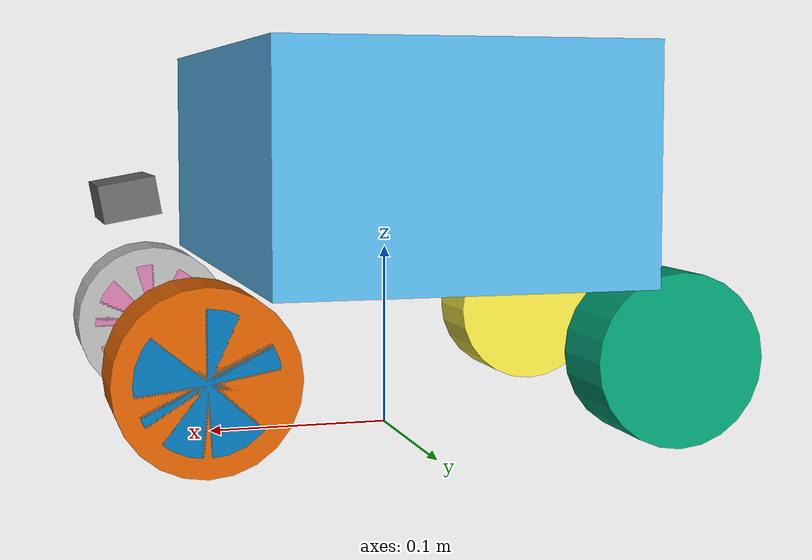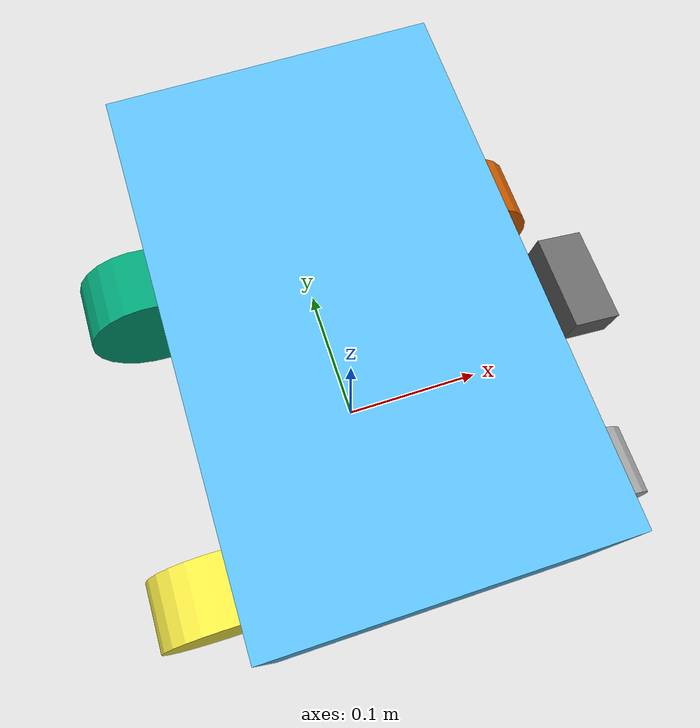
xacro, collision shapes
<?xml version="1.0"?>
<!-- LIMO Ackermann in Gazebo with the same D-Racer camera topic layout as dracer_sim.urdf -->
<robot name="limo_dracer_sim" xmlns:xacro="http://www.ros.org/wiki/xacro">

  <!-- Match vendor/limo_car/gazebo/ackermann.xacro -->
  <xacro:property name="limo_wheelbase" value="0.24"/>
  <xacro:property name="limo_base_link_height" value="0.15"/>
  <!-- Camera: 13 cm above ground, 2.5 cm ahead of front axle, pitch 10 deg down -->
  <xacro:property name="camera_height_ground_m" value="0.13"/>
  <xacro:property name="camera_ahead_front_axle_m" value="0.025"/>
  <xacro:property name="camera_pitch_down_rad" value="0.174533"/>
  <xacro:property name="camera_x" value="${limo_wheelbase/2 + camera_ahead_front_axle_m}"/>
  <xacro:property name="camera_z" value="${camera_height_ground_m - limo_base_link_height}"/>

  <xacro:include filename="$(find limo_car)/gazebo/ackermann.xacro"/>
  <xacro:limo_ackermann/>

  <!-- Gazebo joint states for robot_state_publisher / RViz -->
  <gazebo>
    <plugin name="gazebo_ros_joint_state_publisher"
            filename="libgazebo_ros_joint_state_publisher.so">
      <ros>
        <namespace>/</namespace>
        <remapping>~/out:=joint_states</remapping>
      </ros>
      <update_rate>30</update_rate>
      <joint_name>front_left_steer_joint</joint_name>
      <joint_name>front_left_wheel_joint</joint_name>
      <joint_name>front_right_steer_joint</joint_name>
      <joint_name>front_right_wheel_joint</joint_name>
      <joint_name>rear_left_wheel_joint</joint_name>
      <joint_name>rear_right_wheel_joint</joint_name>
    </plugin>
  </gazebo>

  <link name="camera_link">
    <visual>
      <geometry>
        <box size="0.03 0.06 0.02"/>
      </geometry>
      <material name="gray">
        <color rgba="0.4 0.4 0.4 1"/>
      </material>
    </visual>
    <collision>
      <geometry>
        <box size="0.03 0.06 0.02"/>
      </geometry>
    </collision>
    <inertial>
      <mass value="0.05"/>
      <origin xyz="0 0 0" rpy="0 0 0"/>
      <inertia ixx="1e-5" ixy="0" ixz="0" iyy="1e-5" iyz="0" izz="1e-5"/>
    </inertial>
  </link>

  <joint name="camera_joint" type="fixed">
    <parent link="base_link"/>
    <child link="camera_link"/>
    <origin xyz="${camera_x} 0 ${camera_z}" rpy="0 ${camera_pitch_down_rad} 0"/>
  </joint>

  <gazebo reference="camera_link">
    <sensor name="camera" type="camera">
      <always_on>true</always_on>
      <update_rate>30</update_rate>
      <visualize>false</visualize>
      <camera>
        <horizontal_fov>1.22906</horizontal_fov>
        <image>
          <width>640</width>
          <height>360</height>
          <format>R8G8B8</format>
        </image>
        <clip>
          <near>0.05</near>
          <far>20.0</far>
        </clip>
      </camera>
      <plugin name="camera_controller" filename="libgazebo_ros_camera.so">
        <ros>
          <namespace>/gazebo</namespace>
          <remapping>image_raw:=camera/image_raw</remapping>
          <remapping>camera_info:=camera/camera_info</remapping>
        </ros>
        <frame_name>camera</frame_name>
        <camera_name>camera</camera_name>
      </plugin>
    </sensor>
  </gazebo>

</robot>

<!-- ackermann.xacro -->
<!--Auto: Zhui Li-->
<!--E-Mail: lz554113510@gmail.com -->
<!--Company: Institut für Intermodale Transport- und Logistiksysteme in Technische Universität Braunschweig -->

<robot name="limo_ackermann" xmlns:xacro="http://www.ros.org/wiki/xacro">

    <!-- ******************************** Paramenten zu definieren ************************************* -->
    <!-- definiert Value -->
    <xacro:property name="M_PI" value="3.14159"/>

    <!-- das Value sind all gemessen -->
    <xacro:property name="base_mass" value="4.34"/>
    <xacro:property name="base_x_size" value="0.19" />
    <xacro:property name="base_y_size" value="0.31" />
    <xacro:property name="base_z_size" value="0.12" />

    <xacro:property name="wheelbase" value="0.24"/>
    <xacro:property name="track" value="0.168"/>
    <xacro:property name="wheel_vertical_offset" value="-0.10" />

    <xacro:property name="wheel_mass" value="0.5" />
    <xacro:property name="wheel_length" value="0.045" />
    <xacro:property name="wheel_radius" value="0.045" />

    <!-- definieren die Macro-Function für die Rechnungen der Matrizen für Trägheitsmoment-->
    <!-- Zylinder -->
    <xacro:macro name="cylinder_inertial_matrix" params="m r h">
        <inertial>
            <origin xyz="0.0 0.0 0.0" />
            <mass value="${m}" />
            <inertia ixx="${m*(3*r*r+h*h)/12}" ixy = "0" ixz = "0"
                     iyy="${m*(3*r*r+h*h)/12}" iyz = "0"
                     izz="${m*r*r/2}" />
        </inertial>
    </xacro:macro>
    <!-- Quader -->
    <xacro:macro name="box_inertial_matrix" params="m w l h">
        <inertial>
            <origin xyz="0.0 0.0 0.0" />
            <mass value="${m}" />
            <inertia ixx="${m*(w*w+h*h)/12}" ixy = "0" ixz = "0"
                     iyy="${m*(h*h+l*l)/12}" iyz = "0"
                     izz="${m*(w*w+l*l)/12}" />
        </inertial>
    </xacro:macro>

    <!-- **************************** Makrofunktion zu definieren ************************************** -->
    <!-- Makrofunktion für vorderen Räder mit Steuerscharnier-->
    <!-- front left -->
    <xacro:macro name="limo_left_steering_hinge" params="parent_prefix wheel_prefix *joint_pose">
        <link name="${wheel_prefix}_steer_link">
            <inertial>
                <!-- diese Daten kommen aus den Herstellern -->
                <mass value="0.25" />
                <inertia ixx="0.00525" ixy="0" ixz="0" iyy="0.00035" iyz="0" izz="0.00525" />
                <origin xyz="0 0 0" />
            </inertial>
            <visual>
                <origin xyz="0 0 0" rpy="0 0 0" />
                <geometry>
                    <!-- es ist sehr klein, einfach als Klein definiert wird -->
                    <cylinder length="0.0001" radius="0.0001" />
                </geometry>
            </visual>
            <collision>
                <origin xyz="0 ${wheel_length/2} 0" rpy="${M_PI/2} 0 0" />
                <geometry>
                    <cylinder length="${wheel_length}" radius="${wheel_radius-0.01}" />
                </geometry>
            </collision>
        </link>

        <joint name="${wheel_prefix}_steer_joint" type="revolute">
            <parent link="${parent_prefix}"/>
            <child link="${wheel_prefix}_steer_link"/>
            <xacro:insert_block name="joint_pose"/>
            <axis xyz="0 0 1" />
            <!-- Paramenten von Herstellern -->
            <!-- R_min=0.385 m @ L=0.24 → ±atan(L/R)≈0.5574 rad; vel ≈ full-lock ~70 ms -->
            <limit lower="-0.5574" upper="0.5574" effort="20" velocity="8.0" />
            <dynamics damping="0.05" friction="0.05"/>
        </joint>

        <transmission name="${wheel_prefix}_hinge_trans" type="SimpleTransmission">
            <type>transmission_interface/SimpleTransmission</type>
            <actuator name="${wheel_prefix}_hinge_motor">
                <hardwareInterface>hardware_interface/EffortJointInterface</hardwareInterface>
                <mechanicalReduction>1</mechanicalReduction>
            </actuator>
            <joint name="${wheel_prefix}_steer_joint">
                <hardwareInterface>hardware_interface/EffortJointInterface</hardwareInterface>
            </joint>
        </transmission>

        <link name="${wheel_prefix}_wheel_link">
            <visual>
                <origin xyz="0 0 0" rpy="0 0 0" />
                <geometry>
                    <mesh filename="package://limo_car/meshes/limo_wheel.dae" scale="1.2 1.2 1.2"/>
                </geometry>
            </visual>
            <collision>
                <origin xyz="0 ${wheel_length/2} 0" rpy="${M_PI/2} 0 0" />
                <geometry>
                    <cylinder length="${wheel_length}" radius="${wheel_radius}" />
                </geometry>
            </collision>
            <xacro:cylinder_inertial_matrix  m="${wheel_mass}" r="${wheel_radius}"  h="${wheel_length}" />
        </link>

        <joint name="${wheel_prefix}_wheel_joint" type="continuous">
            <parent link="${wheel_prefix}_steer_link"/>
            <child link="${wheel_prefix}_wheel_link"/>
            <origin xyz="0 0 0" rpy="0 0 0" />
            <axis xyz="0 1 0"/>
        </joint>

        <transmission name="${wheel_prefix}_wheel_trans" type="SimpleTransmission">
            <type>transmission_interface/SimpleTransmission</type>
            <actuator name="${wheel_prefix}_wheel_motor">
                <!-- Type für den Topic(Paramenten) -->
                <hardwareInterface>hardware_interface/VelocityJointInterface</hardwareInterface>
                <mechanicalReduction>1</mechanicalReduction>
            </actuator>
            <joint name="${wheel_prefix}_wheel_joint">
                <hardwareInterface>hardware_interface/VelocityJointInterface</hardwareInterface>
            </joint>
        </transmission>
    </xacro:macro>

    <!-- front right -->
    <xacro:macro name="limo_right_steering_hinge" params="parent_prefix wheel_prefix *joint_pose">
        <link name="${wheel_prefix}_steer_link">
            <inertial>
                <mass value="0.25" />
                <inertia ixx="0.00525" ixy="0" ixz="0" iyy="0.00035" iyz="0" izz="0.00525" />
                <origin xyz="0 0 0" />
            </inertial>
            <visual>
                <origin xyz="0 0 0" rpy="0 0 0" />
                <geometry>
                    <cylinder length="0.0001" radius="0.0001" />
                </geometry>
            </visual>
            <collision>
                <origin xyz="0 ${wheel_length/2} 0" rpy="${M_PI/2} 0 0" />
                <geometry>
                    <cylinder length="${wheel_length}" radius="${wheel_radius-0.01}" />
                </geometry>
            </collision>
        </link>

        <joint name="${wheel_prefix}_steer_joint" type="revolute">
            <parent link="${parent_prefix}"/>
            <child link="${wheel_prefix}_steer_link"/>
            <xacro:insert_block name="joint_pose"/>
            <axis xyz="0 0 -1"/>
            <!-- R_min=0.385 m @ L=0.24 → ±atan(L/R)≈0.5574 rad; vel ≈ full-lock ~70 ms -->
            <limit lower="-0.5574" upper="0.5574" effort="20" velocity="8.0" />
            <dynamics damping="0.05" friction="0.05"/>
        </joint>

        <transmission name="${wheel_prefix}_hinge_trans" type="SimpleTransmission">
            <type>transmission_interface/SimpleTransmission</type>
            <actuator name="${wheel_prefix}_hinge_motor">
                <hardwareInterface>hardware_interface/EffortJointInterface</hardwareInterface>
                <mechanicalReduction>1</mechanicalReduction>
            </actuator>
            <joint name="${wheel_prefix}_steer_joint">
                <hardwareInterface>hardware_interface/EffortJointInterface</hardwareInterface>
            </joint>
        </transmission>

        <link name="${wheel_prefix}_wheel_link">
            <visual>
                <origin xyz="0 0 0" rpy="0 0 0" />
                <geometry>
                    <mesh filename="package://limo_car/meshes/limo_wheel.dae" scale="1.2 1.2 1.2" />
                </geometry>
            </visual>
            <collision>
                <origin xyz="0 ${wheel_length/2} 0" rpy="${M_PI/2} 0 0" />
                <geometry>
                    <cylinder length="${wheel_length}" radius="${wheel_radius}" />
                </geometry>
            </collision>
            <xacro:cylinder_inertial_matrix  m="${wheel_mass}" r="${wheel_radius}"  h="${wheel_length}" />
        </link>

        <joint name="${wheel_prefix}_wheel_joint" type="continuous">
            <parent link="${wheel_prefix}_steer_link"/>
            <child link="${wheel_prefix}_wheel_link"/>
            <origin xyz="0 0 0" rpy="0 0  0" />
            <axis xyz="0 -1 0"/>
        </joint>

        <transmission name="${wheel_prefix}_wheel_trans" type="SimpleTransmission">
            <type>transmission_interface/SimpleTransmission</type>
            <actuator name="${wheel_prefix}_wheel_motor">
                <!-- Type für den Topic(Paramenten) -->
                <hardwareInterface>hardware_interface/VelocityJointInterface</hardwareInterface>
                <mechanicalReduction>1</mechanicalReduction>
            </actuator>
            <joint name="${wheel_prefix}_wheel_joint">
                <hardwareInterface>hardware_interface/VelocityJointInterface</hardwareInterface>
            </joint>
        </transmission>
    </xacro:macro>

    <!-- ***************************************** Base zu bauen *************************************** -->
    <!-- erstellt Hauptanteil des Modells, definiert ein Nullpunkt, um Modell aufzubauen. Es ist einfach für weitere
    Darstellungspostion in Simulation-Umgebung -->
    <xacro:macro name="limo_ackermann">
        <link name="base_footprint"/>

        <joint name="base_joint" type="fixed">
            <parent link="base_footprint"/>
            <child link="base_link"/>
            <origin xyz="0.0 0.0 0.15" rpy="0 0 0"/>
        </joint>

        <!-- herstellt base_link -->
        <link name="base_link">
            <visual>
                <origin xyz="0 0 -0.15" rpy="0 0 ${M_PI/2}" />
                <geometry>
                    <!-- Modell von Hersteller, aber es ist kleiner als realen Produkt, da die Skale vergrößert wird -->
                    <mesh filename="package://limo_car/meshes/limo_base.dae" scale="1.2 1.2 1.2" />
                </geometry>
            </visual>
            <!-- Modell für physikalische Kollision zu modellieren. -->
            <collision>
                <origin xyz="0 0 0" rpy="0 0 0" />
                <geometry>
                    <box size="${base_x_size} ${base_y_size} ${base_z_size}"/>
                </geometry>
            </collision>
            <xacro:box_inertial_matrix  m="${base_mass}" w="${base_x_size}" l="${base_y_size}" h="${base_z_size}" />
        </link>

        <gazebo reference="base_link">
            <material>
                <color rgba="0 0 0 0.5"/>
            </material>
        </gazebo>

        <!-- hinten Räder -->
        <link name="rear_left_wheel_link">
            <visual>
                <origin xyz="0 0 0" rpy="0 0 0" />
                <geometry>
                    <mesh filename="package://limo_car/meshes/limo_wheel.dae" scale="1.2 1.2 1.2"/>
                </geometry>
            </visual>
            <collision>
                <origin xyz="0 ${wheel_length/2} 0" rpy="${M_PI/2} 0 0" />
                <geometry>
                    <cylinder length="${wheel_length}" radius="${wheel_radius}" />
                </geometry>
            </collision>
            <xacro:cylinder_inertial_matrix  m="${wheel_mass}" r="${wheel_radius}" h="${wheel_length}"/>
        </link>

        <joint name="rear_left_wheel_joint" type="continuous">
            <parent link="base_link"/>
            <child link="rear_left_wheel_link"/>
            <origin xyz="${-wheelbase/2} ${track/2} ${wheel_vertical_offset}" rpy="0 0 0" />
            <axis xyz="0 1 0"/>
        </joint>

        <transmission name="rear_left_wheel_trans" type="SimpleTransmission">
            <type>transmission_interface/SimpleTransmission</type>
            <actuator name="rear_left_wheel_motor">
                <hardwareInterface>hardware_interface/VelocityJointInterface</hardwareInterface>
                <mechanicalReduction>1</mechanicalReduction>
            </actuator>
            <joint name="rear_left_wheel_joint">
                <hardwareInterface>hardware_interface/VelocityJointInterface</hardwareInterface>
            </joint>
        </transmission>

        <link name="rear_right_wheel_link">
            <visual>
                <origin xyz="0 0 0" rpy="0 0 0" />
                <geometry>
                    <mesh filename="package://limo_car/meshes/limo_wheel.dae" scale="1.2 1.2 1.2"/>
                </geometry>
            </visual>
            <collision>
                <origin xyz="0 ${wheel_length/2} 0" rpy="${M_PI/2} 0 0" />
                <geometry>
                    <cylinder length="${wheel_length}" radius="${wheel_radius}" />
                </geometry>
            </collision>
            <xacro:cylinder_inertial_matrix  m="${wheel_mass}" r="${wheel_radius}" h="${wheel_length}"/>
        </link>

        <joint name="rear_right_wheel_joint" type="continuous">
            <parent link="base_link"/>
            <child link="rear_right_wheel_link"/>
            <origin xyz="${-wheelbase/2} ${-track/2} ${wheel_vertical_offset}" rpy="${M_PI} 0 0" />
            <axis xyz="0 -1 0"/>
        </joint>

        <transmission name="rear_right_wheel_trans" type="SimpleTransmission">
            <type>transmission_interface/SimpleTransmission</type>
            <actuator name="rear_right_wheel_motor">
                <hardwareInterface>hardware_interface/VelocityJointInterface</hardwareInterface>
                <mechanicalReduction>1</mechanicalReduction>
            </actuator>
            <joint name="rear_right_wheel_joint">
                <hardwareInterface>hardware_interface/VelocityJointInterface</hardwareInterface>
            </joint>
        </transmission>

        <!-- ruft Steuerscharnier mit vorderem Räder auf -->
        <xacro:limo_left_steering_hinge parent_prefix="base_link" wheel_prefix="front_left">
            <origin xyz="${wheelbase/2} ${track/2} ${wheel_vertical_offset}" rpy="0 0 0" />
        </xacro:limo_left_steering_hinge>

        <xacro:limo_right_steering_hinge parent_prefix="base_link" wheel_prefix="front_right">
            <origin xyz="${wheelbase/2} ${-track/2} ${wheel_vertical_offset}" rpy="${M_PI} 0 0" />
        </xacro:limo_right_steering_hinge>

        <!-- ********************************** Kontrolle zu erstellen ************************************* -->
        <gazebo>
            <plugin name="gazebo_ros_control" filename="libgazebo_ros_control.so" />
            <plugin name="ackermann_controller" filename="libgazebo_ros_ackermann_drive.so">
                <update_rate>100</update_rate>
                <front_left_joint>front_left_wheel_joint</front_left_joint>
                <front_right_joint>front_right_wheel_joint</front_right_joint>
                <rear_left_joint>rear_left_wheel_joint</rear_left_joint>
                <rear_right_joint>rear_right_wheel_joint</rear_right_joint>
                <left_steering_joint>front_left_steer_joint</left_steering_joint>
                <right_steering_joint>front_right_steer_joint</right_steering_joint>
                <steering_wheel_joint>/</steering_wheel_joint>

                <left_steering_pid_gain>10000 100 10</left_steering_pid_gain>
                <left_steering_i_rang>0 0</left_steering_i_rang>
                <right_steering_pid_gain>10000 100 10</right_steering_pid_gain>
                <right_steering_i_rang>0 0</right_steering_i_rang>
                <linear_velocity_pid_gain>0.5 10 0.001</linear_velocity_pid_gain>
                <linear_velocity_i_range>0 0</linear_velocity_i_range>

                <max_steer>0.5574</max_steer>

                <wheel_separation>0.172</wheel_separation>
                <wheel_diameter>0.09</wheel_diameter>
                <max_wheel_torque>20</max_wheel_torque>
                <max_wheel_acceleration>1.0</max_wheel_acceleration>
                <command_topic>cmd_vel</command_topic>
                <publish_odom>true</publish_odom>
                <publish_odom_tf>true</publish_odom_tf>
                <publish_wheel_tf>true</publish_wheel_tf>
                <odometry_topic>odom</odometry_topic>
                <odometry_frame>odom</odometry_frame>
                <robot_base_frame>base_footprint</robot_base_frame>
                <odometry_source>1</odometry_source>
            </plugin>
        </gazebo>
    </xacro:macro>
</robot>
